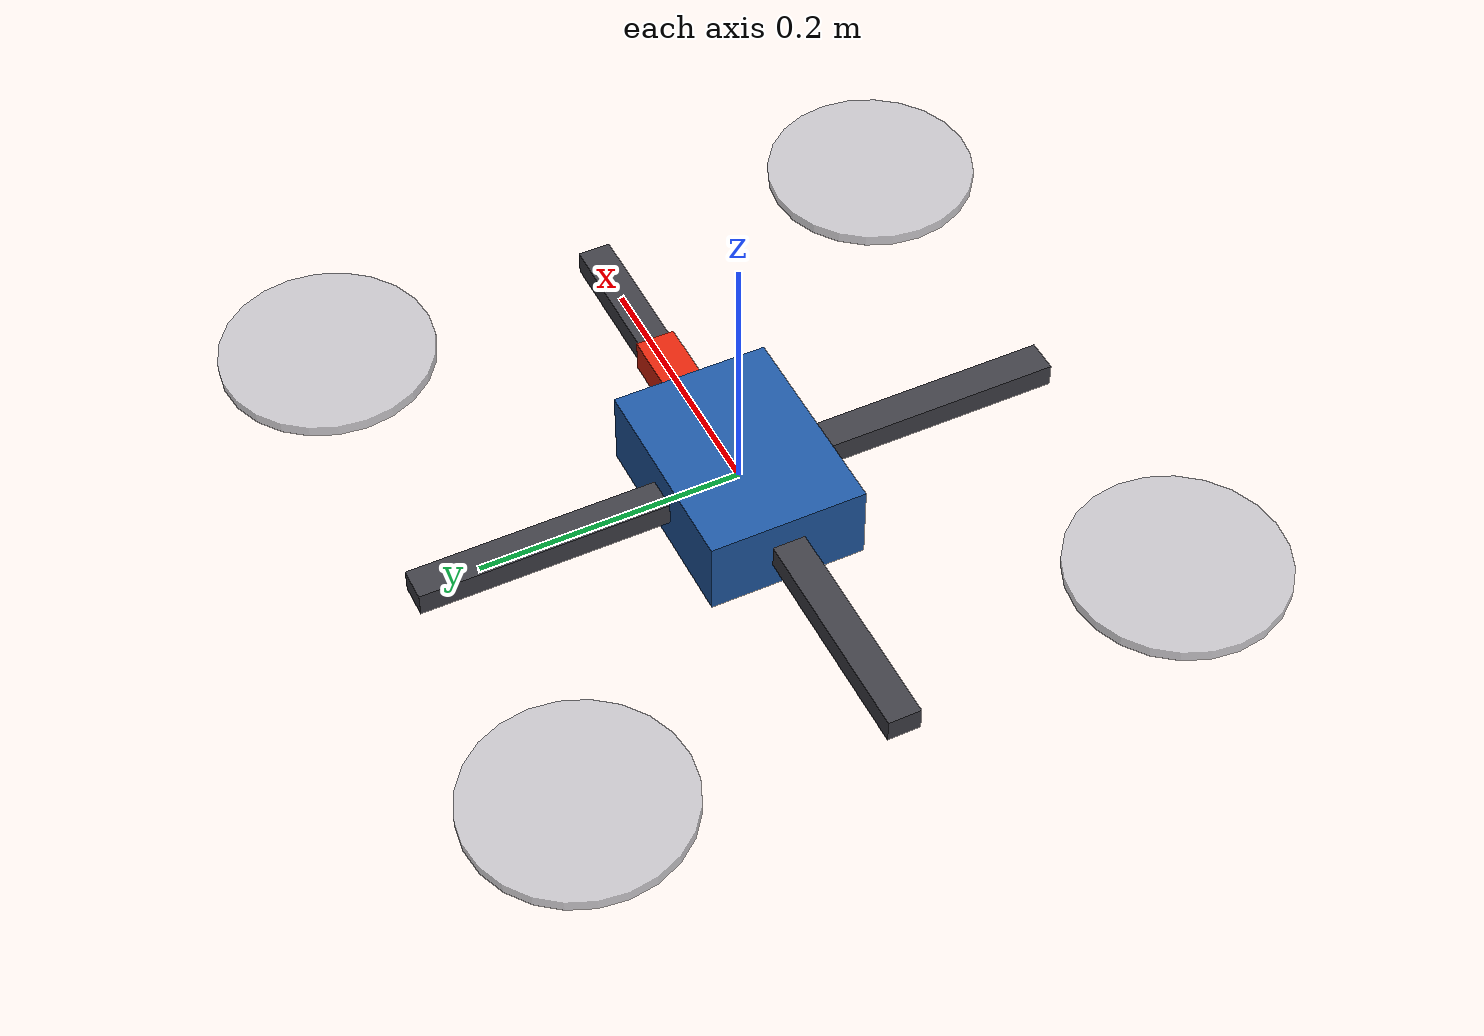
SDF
<?xml version="1.0"?>
<sdf version="1.10">
  <model name="course_quadrotor">
    <static>false</static>
    <self_collide>false</self_collide>

    <!-- Gazebo uses ENU/FLU. The GNC stack performs an explicit conversion to NED/FRD. -->
    <link name="base_link">
      <inertial>
        <mass>1.20</mass>
        <inertia>
          <ixx>0.0125</ixx>
          <iyy>0.0125</iyy>
          <izz>0.0220</izz>
          <ixy>0.0</ixy>
          <ixz>0.0</ixz>
          <iyz>0.0</iyz>
        </inertia>
      </inertial>

      <collision name="body_collision">
        <geometry>
          <box><size>0.16 0.12 0.06</size></box>
        </geometry>
      </collision>

      <visual name="body_visual">
        <geometry>
          <box><size>0.16 0.12 0.06</size></box>
        </geometry>
        <material>
          <ambient>0.08 0.12 0.18 1</ambient>
          <diffuse>0.12 0.35 0.65 1</diffuse>
        </material>
      </visual>

      <visual name="front_marker">
        <pose>0.10 0 0 0 0 0</pose>
        <geometry><box><size>0.08 0.03 0.025</size></box></geometry>
        <material>
          <ambient>0.8 0.1 0.05 1</ambient>
          <diffuse>0.9 0.15 0.05 1</diffuse>
        </material>
      </visual>

      <!-- Arm endpoints use dx = dy = 0.225 m from the specification. -->
      <visual name="arm_x_visual">
        <geometry><box><size>0.50 0.025 0.018</size></box></geometry>
        <material><diffuse>0.25 0.25 0.28 1</diffuse></material>
      </visual>
      <visual name="arm_y_visual">
        <geometry><box><size>0.025 0.50 0.018</size></box></geometry>
        <material><diffuse>0.25 0.25 0.28 1</diffuse></material>
      </visual>

      <visual name="rotor_0_visual">
        <pose>0.225 0.225 0.02 0 0 0</pose>
        <geometry><cylinder><radius>0.08</radius><length>0.008</length></cylinder></geometry>
        <material><diffuse>0.75 0.75 0.78 0.75</diffuse></material>
      </visual>
      <visual name="rotor_1_visual">
        <pose>-0.225 0.225 0.02 0 0 0</pose>
        <geometry><cylinder><radius>0.08</radius><length>0.008</length></cylinder></geometry>
        <material><diffuse>0.75 0.75 0.78 0.75</diffuse></material>
      </visual>
      <visual name="rotor_2_visual">
        <pose>-0.225 -0.225 0.02 0 0 0</pose>
        <geometry><cylinder><radius>0.08</radius><length>0.008</length></cylinder></geometry>
        <material><diffuse>0.75 0.75 0.78 0.75</diffuse></material>
      </visual>
      <visual name="rotor_3_visual">
        <pose>0.225 -0.225 0.02 0 0 0</pose>
        <geometry><cylinder><radius>0.08</radius><length>0.008</length></cylinder></geometry>
        <material><diffuse>0.75 0.75 0.78 0.75</diffuse></material>
      </visual>

      <!-- Raw ideal sensors. Required white noise is added by sensor_simulator_node;
           IMU biases are deliberately not modeled in this acceptance configuration. -->
      <sensor name="imu_raw" type="imu">
        <always_on>true</always_on>
        <update_rate>100</update_rate>
        <topic>/drone/imu_raw</topic>
      </sensor>

      <sensor name="navsat_raw" type="navsat">
        <always_on>true</always_on>
        <update_rate>20</update_rate>
        <topic>/drone/navsat_raw</topic>
      </sensor>
    </link>

    <!-- This is the team's own actuator map. It applies only the equations given
         in the specification; it does not call Gazebo's MulticopterMotorModel. -->
    <plugin filename="librotor_wrench_system.so"
            name="drone_gazebo::RotorWrenchSystem">
      <link_name>base_link</link_name>
      <command_topic>/drone/rotor_thrusts_gz</command_topic>
      <dx>0.225</dx>
      <dy>0.225</dy>
      <moment_ratio>0.015</moment_ratio>
      <min_thrust>0.2</min_thrust>
      <max_thrust>5.5</max_thrust>
      <command_timeout>0.2</command_timeout>
    </plugin>

    <plugin filename="gz-sim-odometry-publisher-system"
            name="gz::sim::systems::OdometryPublisher">
      <odom_publish_frequency>100</odom_publish_frequency>
      <odom_topic>/model/course_quadrotor/odometry</odom_topic>
      <dimensions>3</dimensions>
    </plugin>
  </model>
</sdf>
